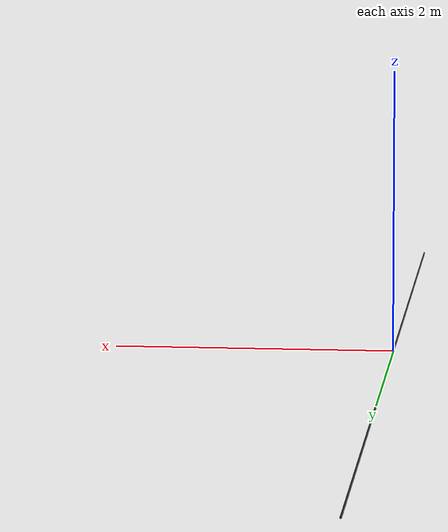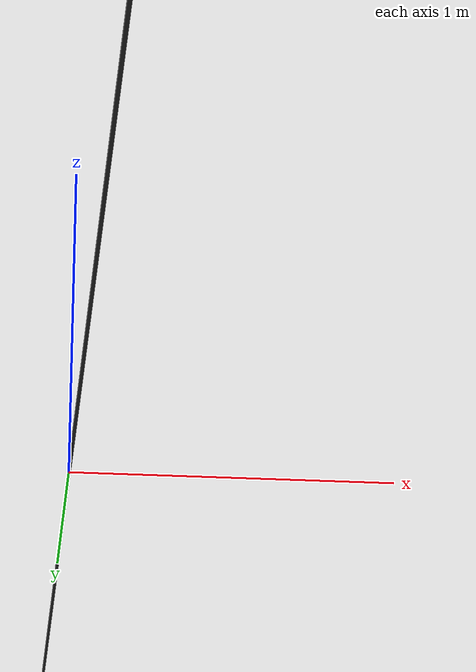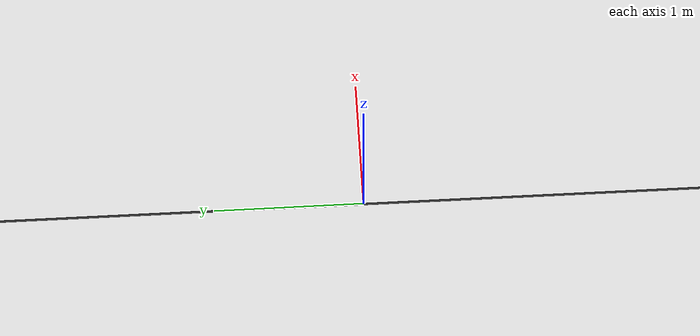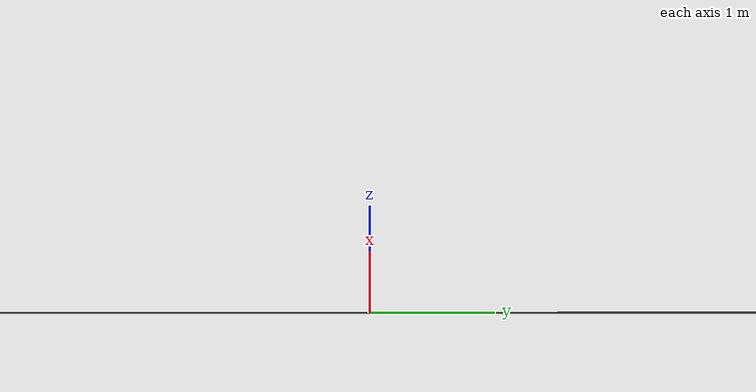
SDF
<?xml version="1.0" ?>
<sdf version="1.7">
  <model name="black_line">
    <static>true</static>
    <link name="link">
      <visual name="visual">
        <geometry>
          <box>
            <size>0.01 10 0.01</size>  <!-- Adjust the size of the line as needed -->
          </box>
        </geometry>
        <material>
          <script>
            <uri>file://media/materials/scripts/gazebo.material</uri>
            <name>Gazebo/Black</name>
          </script>
        </material>
      </visual>
    </link>
  </model>
</sdf>
